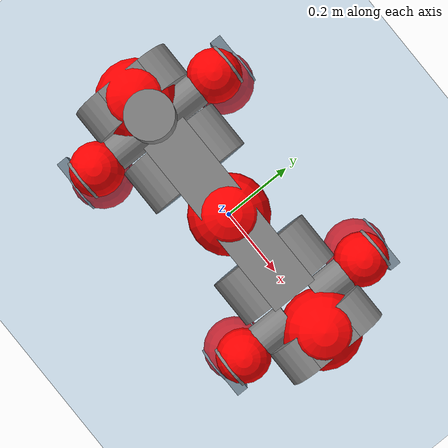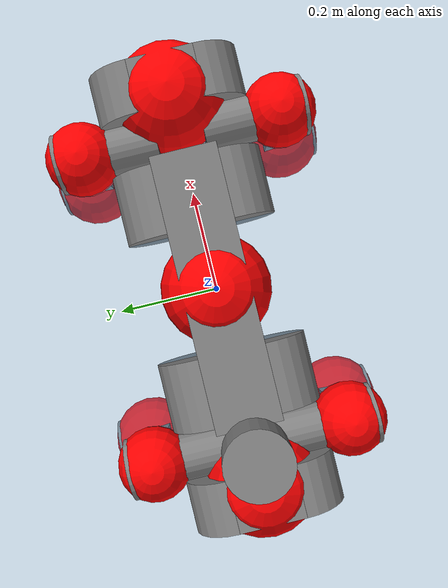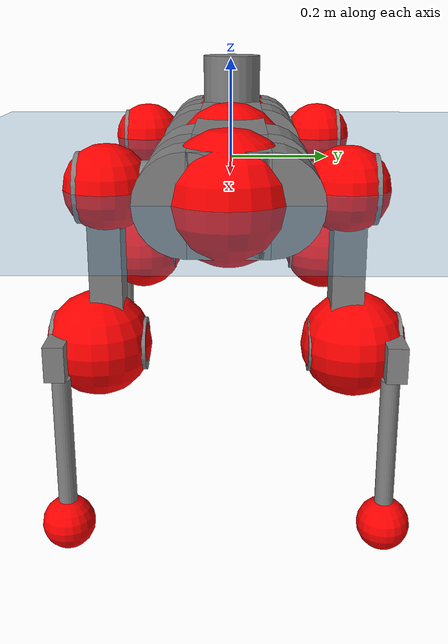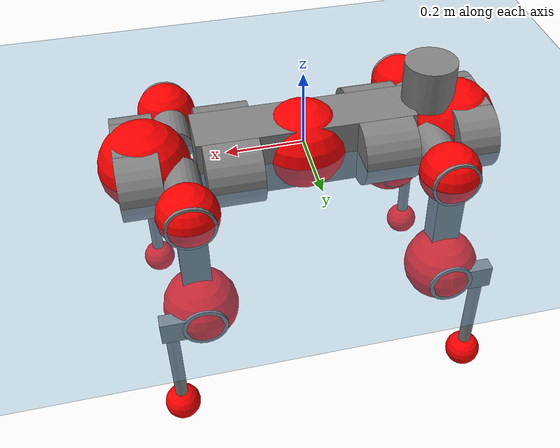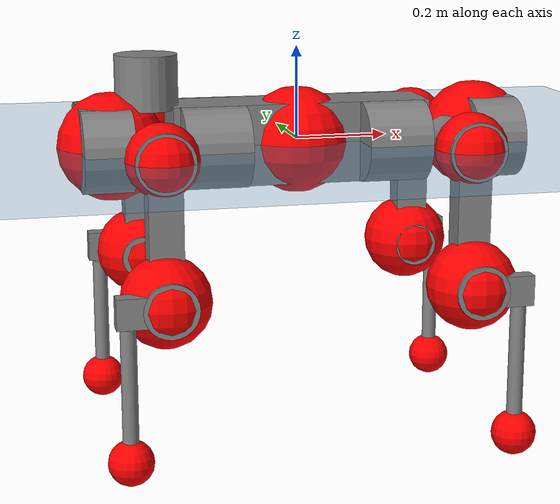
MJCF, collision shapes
<mujoco model="anymal_c">
  <compiler angle="radian" assetdir="assets" balanceinertia="true" inertiafromgeom="false"/>

  <option timestep="0.005" density="1.2" viscosity="2e-05"/>

  <size nkey="1"/>

  <visual>
    <quality shadowsize="8192"/>
    <map shadowclip="0.5"/>
  </visual>

  <default>
    <default class="/">
      <material specular="0" shininess="0.25"/>
      <geom contype="0" conaffinity="0" group="1" solref="-1000 -80"/>
      <site size="0.01 0.005 0.005" group="5"/>
      <general forcelimited="true" forcerange="-80 80" biastype="affine" gainprm="80" biasprm="0 -80 -2"/>
      <default class="anymal_c">
        <joint armature="0.01" damping="0.01" frictionloss="0.1"/>
        <default class="visual">
          <geom type="mesh" group="2"/>
          <default class="visual_zflip"/>
        </default>
        <default class="collision">
          <geom type="cylinder" group="3"/>
          <default class="foot">
            <geom size="0.03 0 0" type="sphere" condim="6" priority="1" friction="0.8 0.02 0.01" solimp="0.015 1 0.03"/>
          </default>
        </default>
      </default>
      <default class="reward_collision_sphere">
        <geom group="5" rgba="1 0 0 1"/>
      </default>
    </default>
  </default>

  <asset>
    <texture type="skybox" colorspace="auto" name="//unnamed_texture_0" builtin="gradient" rgb1="0.95 0.95 0.95" rgb2="0.95 0.95 0.95" width="100" height="600"/>
    <texture type="2d" colorspace="auto" name="texplane" builtin="checker" rgb1="0.345 0.575 0.748" rgb2="0.345 0.575 0.748" markrgb="1 1 1" width="512" height="512"/>
    <texture type="2d" colorspace="linear" name="base" file="base.png"/>
    <texture type="2d" colorspace="linear" name="top_shell" file="top_shell.png"/>
    <texture type="2d" colorspace="linear" name="bottom_shell" file="bottom_shell.png"/>
    <texture type="2d" colorspace="linear" name="remote" file="remote.png"/>
    <texture type="2d" colorspace="linear" name="hatch" file="hatch.png"/>
    <texture type="2d" colorspace="linear" name="handle" file="handle.png"/>
    <texture type="2d" colorspace="linear" name="face" file="face.png"/>
    <texture type="2d" colorspace="linear" name="battery" file="battery.png"/>
    <texture type="2d" colorspace="linear" name="lidar_cage" file="lidar_cage.png"/>
    <texture type="2d" colorspace="linear" name="depth_camera" file="depth_camera.png"/>
    <texture type="2d" colorspace="linear" name="wide_angle_camera" file="wide_angle_camera.png"/>
    <texture type="2d" colorspace="linear" name="lidar" file="lidar.png"/>
    <texture type="2d" colorspace="linear" name="drive" file="drive.png"/>
    <texture type="2d" colorspace="linear" name="hip_l" file="hip_l.png"/>
    <texture type="2d" colorspace="linear" name="shank_l" file="shank_l.png"/>
    <texture type="2d" colorspace="linear" name="foot" file="foot.png"/>
    <texture type="2d" colorspace="linear" name="thigh" file="thigh.png"/>
    <texture type="2d" colorspace="linear" name="shank_r" file="shank_r.png"/>
    <texture type="2d" colorspace="linear" name="hip_r" file="hip_r.png"/>
    <material name="MatPlane" class="/" texture="texplane" texuniform="true" texrepeat="2 2" specular="0.9" shininess="0.5"/>
    <material name="black_plastic" class="/" rgba="0.007 0.007 0.007 1"/>
    <material name="green" class="/" rgba="0.052 0.178 0.033 1"/>
    <material name="red" class="/" rgba="0.178 0.006 0.005 1"/>
    <material name="yellow" class="/" rgba="0.178 0.119 0.006 1"/>
    <material name="lwl" class="/" rgba="0.8 0.8 0.8 1"/>
    <material name="base" class="/" texture="base"/>
    <material name="top_shell" class="/" texture="top_shell"/>
    <material name="bottom_shell" class="/" texture="bottom_shell"/>
    <material name="hip_l" class="/" texture="hip_l"/>
    <material name="thigh" class="/" texture="thigh"/>
    <material name="shank_l" class="/" texture="shank_l"/>
    <material name="foot" class="/" texture="foot"/>
    <material name="hip_r" class="/" texture="hip_r"/>
    <material name="shank" class="/" texture="shank_r"/>
    <material name="hatch" class="/" texture="hatch"/>
    <material name="remote" class="/" texture="remote"/>
    <material name="handle" class="/" texture="handle"/>
    <material name="face" class="/" texture="face"/>
    <material name="depth_camera" class="/" texture="depth_camera"/>
    <material name="wide_angle_camera" class="/" texture="wide_angle_camera"/>
    <material name="battery" class="/" texture="battery"/>
    <material name="lidar_cage" class="/" texture="lidar_cage"/>
    <material name="lidar" class="/" texture="lidar"/>
    <material name="drive" class="/" texture="drive"/>
    <mesh name="base_0" class="/" file="base_0.obj"/>
    <mesh name="base_1" class="/" file="base_1.obj"/>
    <mesh name="base_2" class="/" file="base_2.obj"/>
    <mesh name="base_3" class="/" file="base_3.obj"/>
    <mesh name="base_4" class="/" file="base_4.obj"/>
    <mesh name="base_5" class="/" file="base_5.obj"/>
    <mesh name="top_shell" class="/" file="top_shell.obj"/>
    <mesh name="bottom_shell" class="/" file="bottom_shell.obj"/>
    <mesh name="remote" class="/" file="remote.obj"/>
    <mesh name="handle" class="/" file="handle.obj"/>
    <mesh name="face" class="/" file="face.obj"/>
    <mesh name="wide_angle_camera" class="/" file="wide_angle_camera.obj"/>
    <mesh name="depth_camera" class="/" file="depth_camera.obj"/>
    <mesh name="battery" class="/" file="battery.obj"/>
    <mesh name="lidar_cage" class="/" file="lidar_cage.obj"/>
    <mesh name="lidar" class="/" file="lidar.obj"/>
    <mesh name="drive" class="/" file="drive.obj"/>
    <mesh name="hip_l" class="/" file="hip_l.obj"/>
    <mesh name="thigh" class="/" file="thigh.obj"/>
    <mesh name="shank_l" class="/" file="shank_l.obj"/>
    <mesh name="foot" class="/" file="foot.obj"/>
    <mesh name="hip_r" class="/" file="hip_r.obj"/>
    <mesh name="hatch" class="/" file="hatch.obj"/>
    <mesh name="shank_r" class="/" file="shank_r.obj"/>
  </asset>

  <worldbody>
    <geom name="floor" class="/" size="100 100 0.125" type="plane" group="0" material="MatPlane"/>
    <light name="toplight_shadow" class="/" pos="0 0 5" dir="0.0990148 0.0990148 -0.990148" type="directional" ambient="0.04 0.04 0.04" diffuse="0.55 0.55 0.55" specular="0.12 0.12 0.12"/>
    <light name="toplight_fill" class="/" pos="0 0 5" dir="0.0990148 0.0990148 -0.990148" type="directional" castshadow="false" ambient="0.04 0.04 0.04" diffuse="0.3 0.3 0.3" specular="0.08 0.08 0.08"/>
    <body name="trunk" childclass="anymal_c" pos="0.000206203 -8.06482e-05 -0.00279802" quat="1 6.76042e-06 -1.39054e-05 3.98499e-06">
      <inertial pos="0.00149878 0.00224861 0.0525488" quat="0.500025 0.499983 0.499995 0.499997" mass="16.3531" diaginertia="0.371642 0.529331 0.226048"/>
      <joint name="//unnamed_joint_0" type="free" armature="0" damping="0" frictionloss="0"/>
      <geom name="//unnamed_geom_1" class="visual" material="green" mesh="base_0"/>
      <geom name="//unnamed_geom_2" class="visual" material="yellow" mesh="base_1"/>
      <geom name="//unnamed_geom_3" class="visual" material="red" mesh="base_2"/>
      <geom name="//unnamed_geom_4" class="visual" material="black_plastic" mesh="base_3"/>
      <geom name="//unnamed_geom_5" class="visual" material="lwl" mesh="base_4"/>
      <geom name="//unnamed_geom_6" class="visual" material="base" mesh="base_5"/>
      <geom name="trunk_1" class="collision" size="0.278895 0.0673196 0.0865538" type="box"/>
      <geom name="trunk_2" class="collision" size="0.0865538 0.0697239" pos="0.194968 0.0682859 0" quat="0.707107 0 0.707107 0"/>
      <geom name="trunk_3" class="collision" size="0.0865538 0.0697239" pos="-0.194968 0.0682859 0" quat="0.707107 0 0.707107 0"/>
      <geom name="trunk_4" class="collision" size="0.0865538 0.0697239" pos="0.194968 -0.0682859 0" quat="0.707107 0 0.707107 0"/>
      <geom name="trunk_5" class="collision" size="0.0865538 0.0697239" pos="-0.194968 -0.0682859 0" quat="0.707107 0 0.707107 0"/>
      <geom name="//unnamed_geom_12" class="visual" material="top_shell" mesh="top_shell"/>
      <geom name="//unnamed_geom_13" class="visual" material="bottom_shell" mesh="bottom_shell"/>
      <geom name="//unnamed_geom_14" class="visual" material="remote" mesh="remote"/>
      <geom name="//unnamed_geom_15" class="visual" material="handle" mesh="handle"/>
      <geom name="//unnamed_geom_16" class="visual" pos="0.371559 0 0" quat="1 0 0 0" material="face" mesh="face"/>
      <geom name="trunk_6" class="collision" size="0.052894 0.0673196 0.0865538" pos="0.420861 0 0" type="box"/>
      <geom name="//unnamed_geom_18" class="collision" size="0.0865538 0.052894" pos="0.420861 0.0682859 0" quat="0.707107 0 0.707107 0"/>
      <geom name="//unnamed_geom_19" class="collision" size="0.0865538 0.052894" pos="0.420861 -0.0682859 0" quat="0.707107 0 0.707107 0"/>
      <geom name="//unnamed_geom_20" class="visual" pos="0.413829 0 -0.0304735" quat="0.965926 0 0.258819 0" material="depth_camera" mesh="depth_camera"/>
      <geom name="//unnamed_geom_21" class="visual" pos="0.459855 0 0.0151678" material="wide_angle_camera" mesh="wide_angle_camera"/>
      <geom name="//unnamed_geom_22" class="visual_zflip" pos="-0.371559 0 0" quat="0 0 0 1" material="face" mesh="face"/>
      <geom name="trunk_7" class="collision" size="0.052894 0.0673196 0.0865538" pos="-0.420861 0 0" quat="0 0 0 1" type="box"/>
      <geom name="//unnamed_geom_24" class="collision" size="0.0865538 0.052894" pos="-0.420861 -0.0682859 0" quat="0 -0.707107 0 0.707107"/>
      <geom name="//unnamed_geom_25" class="collision" size="0.0865538 0.052894" pos="-0.420861 0.0682859 0" quat="0 -0.707107 0 0.707107"/>
      <geom name="//unnamed_geom_26" class="visual" pos="-0.413829 0 -0.0304735" quat="0 -0.258819 0 0.965926" material="depth_camera" mesh="depth_camera"/>
      <geom name="//unnamed_geom_27" class="visual_zflip" pos="-0.459855 0 0.0151678" quat="0 0 0 1" material="wide_angle_camera" mesh="wide_angle_camera"/>
      <geom name="//unnamed_geom_28" class="visual" material="battery" mesh="battery"/>
      <geom name="//unnamed_geom_29" class="visual" pos="0 0.0756306 0.028546" quat="0.683013 -0.183013 0.183013 0.683013" material="depth_camera" mesh="depth_camera"/>
      <geom name="//unnamed_geom_30" class="visual" pos="0 -0.0756306 0.028546" quat="0.683013 0.183013 0.183013 -0.683013" material="depth_camera" mesh="depth_camera"/>
      <geom name="//unnamed_geom_31" class="visual" pos="-0.326291 0 0.074471" quat="1 0 0 0" material="lidar_cage" mesh="lidar_cage"/>
      <geom name="trunk_8" class="collision" size="0.0673196 0.0577025" pos="-0.326291 0 0.135264"/>
      <geom name="//unnamed_geom_33" class="visual" pos="-0.326291 3.10799e-05 0.144078" quat="0.707107 0 0 -0.707107" material="lidar" mesh="lidar"/>
      <geom name="//unnamed_geom_34" class="visual" pos="0.268831 0.101467 -6.50293e-10" quat="0.258819 0.965926 0 0" material="drive" mesh="drive"/>
      <geom name="//unnamed_geom_35" class="visual" pos="0.268831 -0.101467 6.50293e-10" quat="0.258819 -0.965926 0 0" material="drive" mesh="drive"/>
      <geom name="//unnamed_geom_36" class="visual" pos="-0.268831 0.101467 6.50293e-10" quat="0 0 0.965926 -0.258819" material="drive" mesh="drive"/>
      <geom name="//unnamed_geom_37" class="visual" pos="-0.268831 -0.101467 -6.50293e-10" quat="0 0 -0.965926 -0.258819" material="drive" mesh="drive"/>
      <geom name="//unnamed_geom_38" class="visual" pos="0.103983 0 0.0739643" quat="1 0 0 0" material="hatch" mesh="hatch"/>
      <geom name="//unnamed_geom_39" class="reward_collision_sphere" size="0.115405"/>
      <geom name="//unnamed_geom_40" class="reward_collision_sphere" size="0.115405" pos="0.403381 0 0"/>
      <geom name="//unnamed_geom_41" class="reward_collision_sphere" size="0.115405" pos="-0.403381 0 0"/>
      <site name="imu" pos="0.227027 -0.00329846 0.0522229" size="0.00961709"/>
      <camera name="track" pos="0 -1.95102 0" quat="0.707107 0.707107 0 0" mode="trackcom"/>
      <camera name="ego_camera" pos="0.403381 0 -0.0405284" quat="-0.5 -0.5 0.5 0.5"/>
      <body name="LF_HIP" pos="0.268973 0.099775 -0.00175771" quat="0.258792 0.965933 3.06155e-05 7.54815e-07">
        <inertial pos="0.0481639 -0.0148547 -0.010384" quat="-0.128985 0.706838 -0.138738 0.681538" mass="2.46661" diaginertia="0.00337766 0.00421181 0.00360682"/>
        <joint name="LF_HAA" pos="0 0 0" axis="0.999994 0.00143197 -0.00328881" range="-0.749487 0.482673" armature="0.0109102" damping="0.0214482" frictionloss="0.0828922"/>
        <geom name="//unnamed_geom_42" class="visual" pos="0 -3.82538e-05 6.28315e-06" quat="0.258819 -0.965926 0 0" material="hip_l" mesh="hip_l"/>
        <geom name="//unnamed_geom_43" class="visual" pos="0.0536945 -0.0661174 -0.0384517" quat="0.183013 -0.683013 0.683013 0.183013" material="drive" mesh="drive"/>
        <geom name="//unnamed_geom_44" class="collision" size="0.0480854 0.0673196" pos="0.0536945 -0.0116669 -0.00699622" quat="-0.353553 -0.612372 0.612372 -0.353553"/>
        <body name="LF_THIGH" pos="0.054149 -0.0709822 -0.0410077" quat="0.182789 -0.683018 0.683045 0.183096">
          <inertial pos="0.0276548 -0.000345631 -0.251107" quat="0.993075 -0.0060855 -0.0811778 0.0847054" mass="2.63593" diaginertia="0.0174341 0.0264567 0.00421879"/>
          <joint name="LF_HFE" pos="0 0 0" axis="0.999973 0.00618192 -0.0038573" range="-3.19793 3.16943" armature="0.00961851" damping="0.0098716" frictionloss="0.0913865"/>
          <geom name="//unnamed_geom_45" class="visual" pos="-0.00157396 -2.4802e-06 0" quat="0.707107 0 0 -0.707107" material="thigh" mesh="thigh"/>
          <geom name="//unnamed_geom_46" class="collision" size="0.0625111 0.0384683" pos="0.0358561 0 0" quat="0.5 0.5 -0.5 -0.5"/>
          <geom name="//unnamed_geom_47" class="collision" size="0.0360641 0.0288513 0.135903" pos="0.0268921 0 -0.143181" quat="0.707107 0 0 -0.707107" type="box"/>
          <geom name="//unnamed_geom_48" class="visual" pos="0.0899092 0 -0.288765" quat="1 0 0 0" material="drive" mesh="drive"/>
          <geom name="//unnamed_geom_49" class="collision" size="0.0480854 0.0673196" pos="0.027161 0 -0.288765" quat="0.707107 0 0.707107 0"/>
          <geom name="//unnamed_geom_50" class="reward_collision_sphere" size="0.0769367" pos="0.0224101 0 0"/>
          <body name="LF_SHANK" pos="0.0890814 0.00234414 -0.286328" quat="0.999999 0.0002695 0.000664745 -0.0010002">
            <inertial pos="0.00555912 -0.0598556 -0.0816607" quat="0.993033 -0.114944 -0.00116623 -0.0259047" mass="0.498706" diaginertia="0.00587531 0.00805135 0.00114256"/>
            <joint name="LF_KFE" pos="0 0 0" axis="0.999994 0.00355534 3.64032e-05" stiffness="0.000640223" range="-3.16149 3.15637" armature="0.00897378" damping="0.0235498" frictionloss="0.0826809"/>
            <geom name="//unnamed_geom_51" class="visual" pos="-0.000513235 -0.00273659 0" quat="0.707107 0 0 -0.707107" material="shank_l" mesh="shank_l"/>
            <geom name="LF_kfe_act" class="collision" size="0.0577025 0.0192342" pos="0.0179281 0 0" quat="0.5 0.5 -0.5 -0.5"/>
            <geom name="//unnamed_geom_53" class="collision" size="0.0552973 0.0324577 0.0182725" pos="0.0179281 -0.056091 0" quat="0.5 0.5 -0.5 -0.5" type="box"/>
            <geom name="//unnamed_geom_54" class="visual" pos="0.0116982 -0.0866782 -0.342435" quat="0.382683 0 0 -0.92388" material="foot" mesh="foot"/>
            <geom name="LF_calf" class="collision" size="0.0168299 0.135843" pos="0.0116981 -0.0857963 -0.171217" quat="0.707107 0 0 -0.707107"/>
            <geom name="LF_foot" class="foot" size="0.031335" pos="0.0116981 -0.0857963 -0.319637" quat="0.707107 0 0 -0.707107"/>
            <geom name="//unnamed_geom_57" class="reward_collision_sphere" size="0.0961709" pos="-0.0448202 0 0"/>
            <geom name="//unnamed_geom_58" class="reward_collision_sphere" size="0.0480854" pos="0.0116981 -0.0857963 -0.319637"/>
            <site name="LF_foot" class="foot" pos="0.0116981 -0.0857963 -0.319637" quat="0.707107 0 0 -0.707107" size="0.00961709"/>
          </body>
        </body>
      </body>
      <body name="RF_HIP" pos="0.270372 -0.104614 0.000341407" quat="0.2593 -0.965796 -0.000259271 0.00134376">
        <inertial pos="0.0505531 0.0143642 -0.00757827" quat="0.135699 0.677729 0.129332 0.711015" mass="2.40499" diaginertia="0.00331266 0.00410304 0.00350853"/>
        <joint name="RF_HAA" pos="0 0 0" axis="0.999999 -0.000752796 -0.000718147" range="-0.436747 0.672732" armature="0.00944419" damping="0.010421" frictionloss="0.0834567"/>
        <geom name="//unnamed_geom_59" class="visual" pos="0 3.82535e-05 6.28314e-06" quat="0.258819 0.965926 0 0" material="hip_r" mesh="hip_r"/>
        <geom name="//unnamed_geom_60" class="visual" pos="0.0536946 0.0661174 -0.0384517" quat="0.183013 0.683013 0.683013 -0.183013" material="drive" mesh="drive"/>
        <geom name="//unnamed_geom_61" class="collision" size="0.0480854 0.0673196" pos="0.0536945 0.0116669 -0.00699622" quat="-0.353553 0.612372 0.612372 0.353553"/>
        <body name="RF_THIGH" pos="0.0557272 0.0733417 -0.0436127" quat="0.183463 0.682777 0.683144 -0.182954">
          <inertial pos="0.0278488 0.000994461 -0.248611" quat="0.992817 -0.00365889 -0.0807306 0.0882261" mass="2.72133" diaginertia="0.0173553 0.0264633 0.00452499"/>
          <joint name="RF_HFE" pos="0 0 0" axis="0.999957 0.00411821 -0.00831987" stiffness="0.00623544" range="-3.10855 3.09064" armature="0.00976766" damping="0" frictionloss="0.0979824"/>
          <geom name="//unnamed_geom_62" class="visual" pos="-0.00157396 -2.4802e-06 0" quat="0.707107 0 0 -0.707107" material="thigh" mesh="thigh"/>
          <geom name="//unnamed_geom_63" class="collision" size="0.0625111 0.0384683" pos="0.0358561 0 0" quat="0.5 0.5 0.5 0.5"/>
          <geom name="//unnamed_geom_64" class="collision" size="0.0360641 0.0288513 0.135903" pos="0.0268921 0 -0.143181" quat="0.707107 0 0 0.707107" type="box"/>
          <geom name="//unnamed_geom_65" class="visual" pos="0.0899092 0 -0.288765" quat="1 0 0 0" material="drive" mesh="drive"/>
          <geom name="//unnamed_geom_66" class="collision" size="0.0480854 0.0673196" pos="0.027161 0 -0.288765" quat="0.707107 0 0.707107 0"/>
          <geom name="//unnamed_geom_67" class="reward_collision_sphere" size="0.0769367" pos="0.0224101 0 0"/>
          <body name="RF_SHANK" pos="0.0925366 -0.000290806 -0.286711" quat="1 0.000292492 0.000123754 -0.000304499">
            <inertial pos="0.00409719 0.060185 -0.0796699" quat="0.993018 0.115322 -0.00183387 0.0247697" mass="0.51515" diaginertia="0.006082 0.00816679 0.00119536"/>
            <joint name="RF_KFE" pos="0 0 0" axis="0.999978 -0.0046663 -0.00480196" range="-3.12757 3.08196" armature="0.00936015" damping="0.00391624" frictionloss="0.088192"/>
            <geom name="//unnamed_geom_68" class="visual" pos="-0.000513232 0.00273659 0" quat="0.707107 0 0 0.707107" material="shank" mesh="shank_r"/>
            <geom name="RF_kfe_act" class="collision" size="0.0577025 0.0192342" pos="0.0179281 0 0" quat="0.5 0.5 0.5 0.5"/>
            <geom name="//unnamed_geom_70" class="collision" size="0.0552973 0.0324577 0.0182725" pos="0.0179281 0.056091 0" quat="0.5 0.5 0.5 0.5" type="box"/>
            <geom name="//unnamed_geom_71" class="visual" pos="0.0116979 0.0866782 -0.342435" quat="0.382683 0 0 0.92388" material="foot" mesh="foot"/>
            <geom name="RF_calf" class="collision" size="0.0168299 0.135843" pos="0.0116981 0.0857963 -0.171217" quat="0.707107 0 0 0.707107"/>
            <geom name="RF_foot" class="foot" size="0.0277829" pos="0.0116981 0.0857963 -0.319637" quat="0.707107 0 0 0.707107"/>
            <geom name="//unnamed_geom_74" class="reward_collision_sphere" size="0.0961709" pos="-0.0448202 0 0"/>
            <geom name="//unnamed_geom_75" class="reward_collision_sphere" size="0.0480854" pos="0.0116981 0.0857963 -0.319637"/>
            <site name="RF_foot" class="foot" pos="0.0116981 0.0857963 -0.319637" quat="0.707107 0 0 0.707107" size="0.00961709"/>
          </body>
        </body>
      </body>
      <body name="LH_HIP" pos="-0.267511 0.104115 -5.54812e-05" quat="0.000119663 -0.000192247 0.96603 -0.25843">
        <inertial pos="0.0489678 0.0120194 -0.0093878" quat="0.130902 0.678476 0.133148 0.710497" mass="2.42946" diaginertia="0.00342636 0.00449792 0.00344548"/>
        <joint name="LH_HAA" pos="0 0 0" axis="0.999918 -0.000875206 -0.0127507" range="-0.503319 0.685853" armature="0.00945599" damping="0" frictionloss="0.106405"/>
        <geom name="//unnamed_geom_76" class="visual" pos="0 3.82535e-05 6.28314e-06" quat="-0.258819 -0.965926 0 0" material="hip_r" mesh="hip_r"/>
        <geom name="//unnamed_geom_77" class="visual" pos="0.0536946 0.0661174 -0.0384517" quat="0.183013 0.683013 0.683013 -0.183013" material="drive" mesh="drive"/>
        <geom name="//unnamed_geom_78" class="collision" size="0.0480854 0.0673196" pos="0.0536945 0.0116669 -0.00699622" quat="-0.353553 0.612372 0.612372 0.353553"/>
        <body name="LH_THIGH" pos="0.0530232 0.0677225 -0.0430036" quat="0.183044 0.683107 0.682565 -0.184295">
          <inertial pos="0.0269999 -0.00288252 -0.248715" quat="0.993053 -0.00640371 -0.0750859 0.090376" mass="2.71312" diaginertia="0.0182143 0.0263979 0.00471231"/>
          <joint name="LH_HFE" pos="0 0 0" axis="1 0.000174436 -0.000468182" stiffness="0.00436779" range="-3.1369 3.14501" armature="0.00949265" damping="0.011477" frictionloss="0.0954272"/>
          <geom name="//unnamed_geom_79" class="visual" pos="-0.00157396 -2.4802e-06 0" quat="0.707107 0 0 -0.707107" material="thigh" mesh="thigh"/>
          <geom name="//unnamed_geom_80" class="collision" size="0.0625111 0.0384683" pos="0.0358561 0 0" quat="0.5 0.5 -0.5 -0.5"/>
          <geom name="//unnamed_geom_81" class="collision" size="0.0360641 0.0288513 0.135903" pos="0.0268921 0 -0.143181" quat="0.707107 0 0 -0.707107" type="box"/>
          <geom name="//unnamed_geom_82" class="visual" pos="0.0899092 0 -0.288765" quat="1 0 0 0" material="drive" mesh="drive"/>
          <geom name="//unnamed_geom_83" class="collision" size="0.0480854 0.0673196" pos="0.027161 0 -0.288765" quat="0.707107 0 0.707107 0"/>
          <geom name="//unnamed_geom_84" class="reward_collision_sphere" size="0.0769367" pos="0.0224101 0 0"/>
          <body name="LH_SHANK" pos="0.0923907 -0.000241232 -0.289037" quat="0.999999 0.000601003 0.000355479 0.00107903">
            <inertial pos="0.00773589 0.0588535 -0.0844536" quat="0.992901 0.116185 -0.000488564 0.0254607" mass="0.514893" diaginertia="0.00594703 0.00855627 0.0012365"/>
            <joint name="LH_KFE" pos="0 0 0" axis="0.999985 -0.00498935 0.00213135" range="-3.13765 3.11369" armature="0.00947658" damping="0.0221902" frictionloss="0.105465"/>
            <geom name="//unnamed_geom_85" class="visual" pos="-0.000513232 0.00273659 0" quat="-0.707107 0 0 -0.707107" material="shank" mesh="shank_r"/>
            <geom name="LH_kfe_act" class="collision" size="0.0577025 0.0192342" pos="0.0179281 0 0" quat="0.5 0.5 -0.5 -0.5"/>
            <geom name="//unnamed_geom_87" class="collision" size="0.0552973 0.0324577 0.0182725" pos="0.0179281 0.056091 0" quat="0.5 0.5 -0.5 -0.5" type="box"/>
            <geom name="//unnamed_geom_88" class="visual" pos="0.0116979 0.0866782 -0.342435" quat="-0.382683 0 0 -0.92388" material="foot" mesh="foot"/>
            <geom name="LH_calf" class="collision" size="0.0168299 0.135843" pos="0.0116981 0.0857963 -0.171217" quat="0.707107 0 0 -0.707107"/>
            <geom name="LH_foot" class="foot" size="0.0274322" pos="0.0116981 0.0857963 -0.319637" quat="0.707107 0 0 -0.707107"/>
            <geom name="//unnamed_geom_91" class="reward_collision_sphere" size="0.0961709" pos="-0.0448202 0 0"/>
            <geom name="//unnamed_geom_92" class="reward_collision_sphere" size="0.0480854" pos="0.0116981 0.0857963 -0.319637"/>
            <site name="LH_foot" class="foot" pos="0.0116981 0.0857963 -0.319637" quat="0.707107 0 0 -0.707107" size="0.00961709"/>
          </body>
        </body>
      </body>
      <body name="RH_HIP" pos="-0.269343 -0.0983958 -0.00121773" quat="0.000104595 0.00129124 -0.966144 -0.258">
        <inertial pos="0.0502961 -0.0130844 -0.010351" quat="-0.129092 0.715513 -0.134172 0.673331" mass="2.38905" diaginertia="0.00338196 0.00409448 0.00340497"/>
        <joint name="RH_HAA" pos="0 0 0" axis="0.99998 0.00526244 -0.0035258" range="-0.7769 0.490697" armature="0.00823383" damping="0.0121079" frictionloss="0.108704"/>
        <geom name="//unnamed_geom_93" class="visual" pos="0 -3.82538e-05 6.28315e-06" quat="-0.258819 0.965926 0 0" material="hip_l" mesh="hip_l"/>
        <geom name="//unnamed_geom_94" class="visual" pos="0.0536945 -0.0661174 -0.0384517" quat="-0.183013 0.683013 -0.683013 -0.183013" material="drive" mesh="drive"/>
        <geom name="//unnamed_geom_95" class="collision" size="0.0480854 0.0673196" pos="0.0536945 -0.0116669 -0.00699622" quat="0.353553 0.612372 -0.612372 0.353553"/>
        <body name="RH_THIGH" pos="0.0545635 -0.0699822 -0.0441055" quat="-0.183066 0.682927 -0.683049 -0.183146">
          <inertial pos="0.0277472 0.00155582 -0.246333" quat="0.992272 -0.00582739 -0.0942329 0.0805153" mass="2.6802" diaginertia="0.0172721 0.0257948 0.00443359"/>
          <joint name="RH_HFE" pos="0 0 0" axis="0.99992 0.0119064 -0.00425523" stiffness="0.0108435" range="-3.11163 3.09386" armature="0.0104991" damping="0.00903902" frictionloss="0.0984334"/>
          <geom name="//unnamed_geom_96" class="visual" pos="-0.00157396 -2.4802e-06 0" quat="0.707107 0 0 -0.707107" material="thigh" mesh="thigh"/>
          <geom name="//unnamed_geom_97" class="collision" size="0.0625111 0.0384683" pos="0.0358561 0 0" quat="0.5 0.5 0.5 0.5"/>
          <geom name="//unnamed_geom_98" class="collision" size="0.0360641 0.0288513 0.135903" pos="0.0268921 0 -0.143181" quat="0.707107 0 0 0.707107" type="box"/>
          <geom name="//unnamed_geom_99" class="visual" pos="0.0899092 0 -0.288765" quat="1 0 0 0" material="drive" mesh="drive"/>
          <geom name="//unnamed_geom_100" class="collision" size="0.0480854 0.0673196" pos="0.027161 0 -0.288765" quat="0.707107 0 0.707107 0"/>
          <geom name="//unnamed_geom_101" class="reward_collision_sphere" size="0.0769367" pos="0.0224101 0 0"/>
          <body name="RH_SHANK" pos="0.0874768 -0.00250024 -0.288079" quat="0.999999 -0.00120242 -0.000863776 0.000240511">
            <inertial pos="0.00703895 -0.0601697 -0.0816977" quat="0.992254 -0.122784 -0.00458183 -0.0183127" mass="0.49407" diaginertia="0.00567755 0.00791438 0.001187"/>
            <joint name="RH_KFE" pos="0 0 0" axis="0.999966 -0.00472765 0.00681349" stiffness="0.00825375" range="-3.07412 3.18815" armature="0.00977245" damping="0.00846671" frictionloss="0.0912926"/>
            <geom name="//unnamed_geom_102" class="visual" pos="-0.000513235 -0.00273659 0" quat="0.707107 0 0 -0.707107" material="shank_l" mesh="shank_l"/>
            <geom name="RH_kfe_act" class="collision" size="0.0577025 0.0192342" pos="0.0179281 0 0" quat="0.5 0.5 0.5 0.5"/>
            <geom name="//unnamed_geom_104" class="collision" size="0.0552973 0.0324577 0.0182725" pos="0.0179281 -0.056091 0" quat="0.5 0.5 0.5 0.5" type="box"/>
            <geom name="//unnamed_geom_105" class="visual" pos="0.0116982 -0.0866782 -0.342435" quat="0.382683 0 0 -0.92388" material="foot" mesh="foot"/>
            <geom name="RH_calf" class="collision" size="0.0168299 0.135843" pos="0.0116981 -0.0857963 -0.171217" quat="0.707107 0 0 0.707107"/>
            <geom name="RH_foot" class="foot" size="0.0268117" pos="0.0116981 -0.0857963 -0.319637" quat="0.707107 0 0 0.707107"/>
            <geom name="//unnamed_geom_108" class="reward_collision_sphere" size="0.0961709" pos="-0.0448202 0 0"/>
            <geom name="//unnamed_geom_109" class="reward_collision_sphere" size="0.0480854" pos="0.0116981 -0.0857963 -0.319637"/>
            <site name="RH_foot" class="foot" pos="0.0116981 -0.0857963 -0.319637" quat="0.707107 0 0 0.707107" size="0.00961709"/>
          </body>
        </body>
      </body>
    </body>
  </worldbody>

  <contact>
    <pair class="/" geom1="floor" geom2="LF_foot" name="//unnamed_contact_0"/>
    <pair class="/" geom1="floor" geom2="RF_foot" name="//unnamed_contact_1"/>
    <pair class="/" geom1="floor" geom2="LH_foot" name="//unnamed_contact_2"/>
    <pair class="/" geom1="floor" geom2="RH_foot" name="//unnamed_contact_3"/>
  </contact>

  <actuator>
    <general name="LF_HAA" class="/" joint="LF_HAA" forcerange="-71.3039 71.3039" gainprm="82.3217" biasprm="0 -82.3217 -2.02997"/>
    <general name="LF_HFE" class="/" joint="LF_HFE" forcerange="-72.0317 72.0317" gainprm="82.3217" biasprm="0 -82.3217 -2.02997"/>
    <general name="LF_KFE" class="/" joint="LF_KFE" forcerange="-76.7937 76.7937" gainprm="82.3217" biasprm="0 -82.3217 -2.02997"/>
    <general name="RF_HAA" class="/" joint="RF_HAA" forcerange="-77.4415 77.4415" gainprm="82.3217" biasprm="0 -82.3217 -2.02997"/>
    <general name="RF_HFE" class="/" joint="RF_HFE" forcerange="-82.3743 82.3743" gainprm="82.3217" biasprm="0 -82.3217 -2.02997"/>
    <general name="RF_KFE" class="/" joint="RF_KFE" forcerange="-72.2237 72.2237" gainprm="82.3217" biasprm="0 -82.3217 -2.02997"/>
    <general name="LH_HAA" class="/" joint="LH_HAA" forcerange="-85.25 85.25" gainprm="82.3217" biasprm="0 -82.3217 -2.02997"/>
    <general name="LH_HFE" class="/" joint="LH_HFE" forcerange="-76.7916 76.7916" gainprm="82.3217" biasprm="0 -82.3217 -2.02997"/>
    <general name="LH_KFE" class="/" joint="LH_KFE" forcerange="-72.0778 72.0778" gainprm="82.3217" biasprm="0 -82.3217 -2.02997"/>
    <general name="RH_HAA" class="/" joint="RH_HAA" forcerange="-71.843 71.843" gainprm="82.3217" biasprm="0 -82.3217 -2.02997"/>
    <general name="RH_HFE" class="/" joint="RH_HFE" forcerange="-79.9043 79.9043" gainprm="82.3217" biasprm="0 -82.3217 -2.02997"/>
    <general name="RH_KFE" class="/" joint="RH_KFE" forcerange="-78.6865 78.6865" gainprm="82.3217" biasprm="0 -82.3217 -2.02997"/>
  </actuator>

  <sensor>
    <gyro site="imu" name="imu_angular_velocity"/>
    <velocimeter site="imu" name="imu_linear_velocity"/>
    <framelinvel objtype="site" objname="LF_foot" name="LF_foot_global_linear_velocity"/>
    <framelinvel objtype="site" objname="RF_foot" name="RF_foot_global_linear_velocity"/>
    <framelinvel objtype="site" objname="LH_foot" name="LH_foot_global_linear_velocity"/>
    <framelinvel objtype="site" objname="RH_foot" name="RH_foot_global_linear_velocity"/>
  </sensor>

  <keyframe>
    <key name="home" qpos="0 0 0.55 1 0 0 0 0 0.4 -0.8 0 -0.4 0.8 0 -0.4 0.8 0 0.4 -0.8"/>
  </keyframe>
</mujoco>
